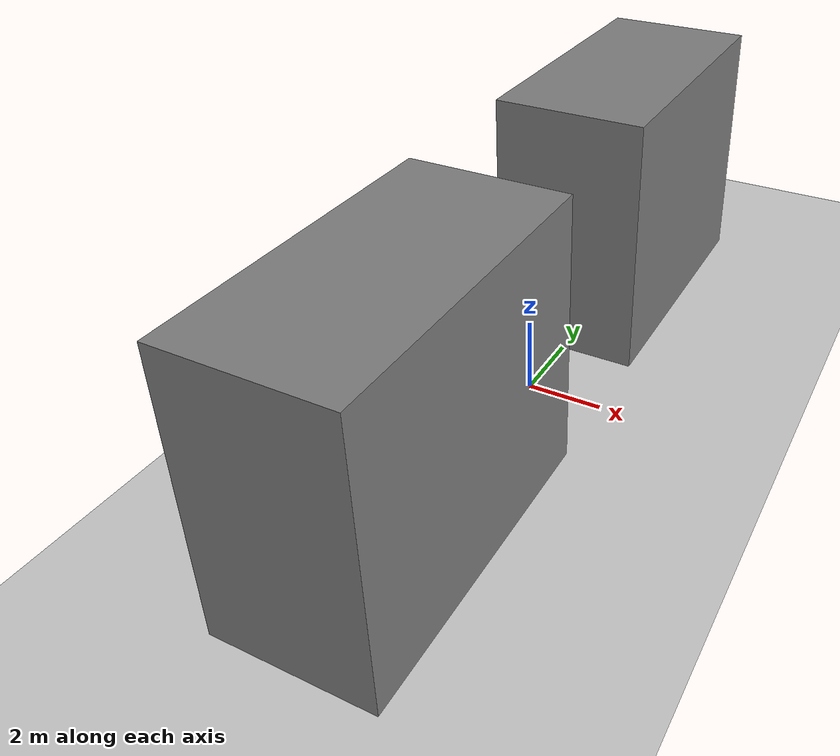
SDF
<?xml version="1.0" ?>
<sdf version="1.9">
  <world name="obstacle_corridor">

    <!-- Physics -->
    <physics name="default_physics" type="ode">
      <max_step_size>0.004</max_step_size>
      <real_time_update_rate>250</real_time_update_rate>
    </physics>

    <!-- Ground plane -->
    <model name="ground_plane">
      <static>true</static>
      <link name="link">
        <collision name="collision">
          <geometry>
            <plane>
              <normal>0 0 1</normal>
              <size>500 500</size>
            </plane>
          </geometry>
        </collision>
        <visual name="visual">
          <geometry>
            <plane>
              <normal>0 0 1</normal>
              <size>500 500</size>
            </plane>
          </geometry>
          <material>
            <ambient>0.8 0.8 0.8 1</ambient>
            <diffuse>0.8 0.8 0.8 1</diffuse>
          </material>
        </visual>
      </link>
    </model>

    <!-- Sun -->
    <light type="directional" name="sun">
      <cast_shadows>true</cast_shadows>
      <pose>0 0 10 0 0 0</pose>
      <diffuse>0.8 0.8 0.8 1</diffuse>
      <specular>0.2 0.2 0.2 1</specular>
      <direction>-0.5 0.1 -0.9</direction>
    </light>

    <!-- Wall left: covers x:[-2,2], y:[-10,-2], z:[0,7] -->
    <model name="wall_left">
      <static>true</static>
      <pose>0 -6 3.5 0 0 0</pose>
      <link name="link">
        <collision name="collision">
          <geometry>
            <box>
              <size>4 8 7</size>
            </box>
          </geometry>
        </collision>
        <visual name="visual">
          <geometry>
            <box>
              <size>4 8 7</size>
            </box>
          </geometry>
          <material>
            <ambient>0.4 0.4 0.4 1</ambient>
            <diffuse>0.5 0.5 0.5 1</diffuse>
          </material>
        </visual>
      </link>
    </model>

    <!-- Wall right: covers x:[-2,2], y:[2,10], z:[0,7] -->
    <model name="wall_right">
      <static>true</static>
      <pose>0 6 3.5 0 0 0</pose>
      <link name="link">
        <collision name="collision">
          <geometry>
            <box>
              <size>4 8 7</size>
            </box>
          </geometry>
        </collision>
        <visual name="visual">
          <geometry>
            <box>
              <size>4 8 7</size>
            </box>
          </geometry>
          <material>
            <ambient>0.4 0.4 0.4 1</ambient>
            <diffuse>0.5 0.5 0.5 1</diffuse>
          </material>
        </visual>
      </link>
    </model>

  </world>
</sdf>
